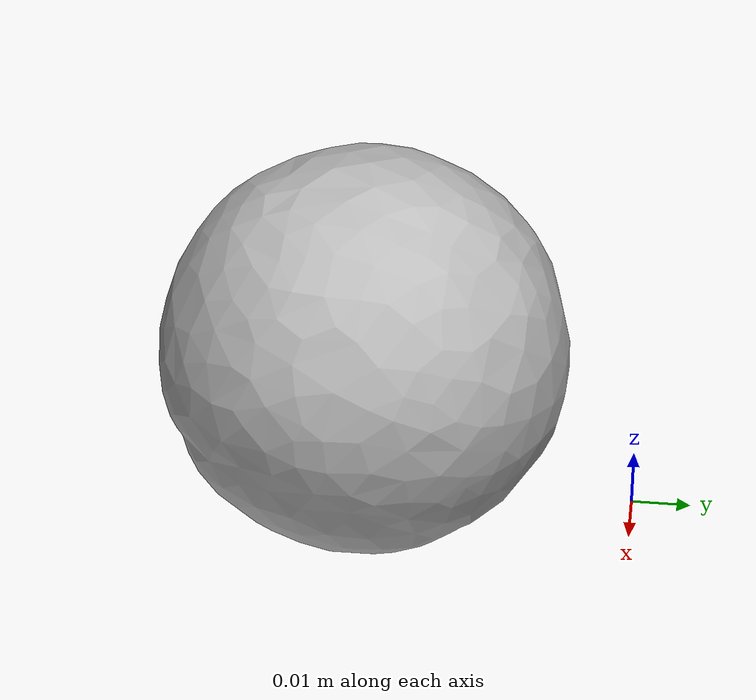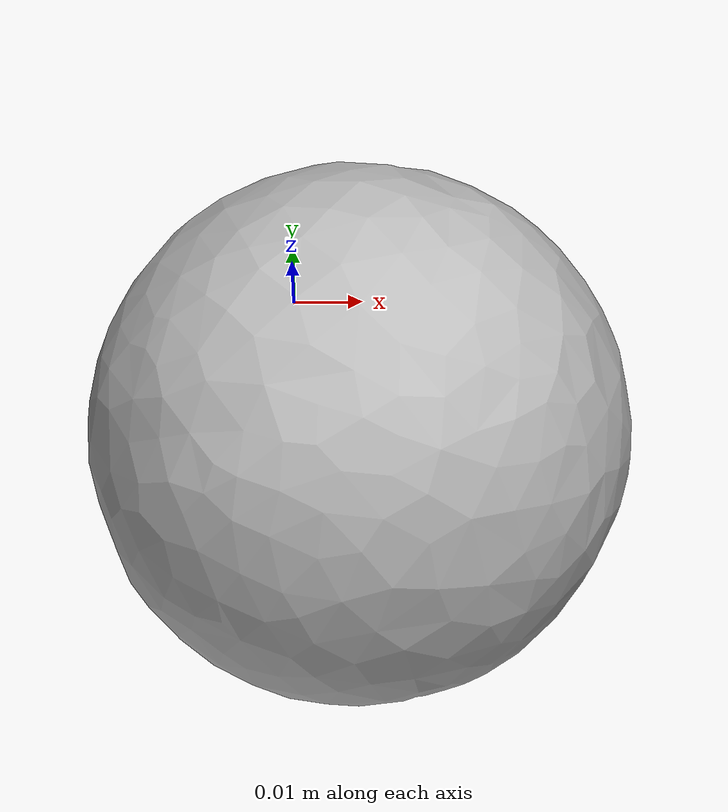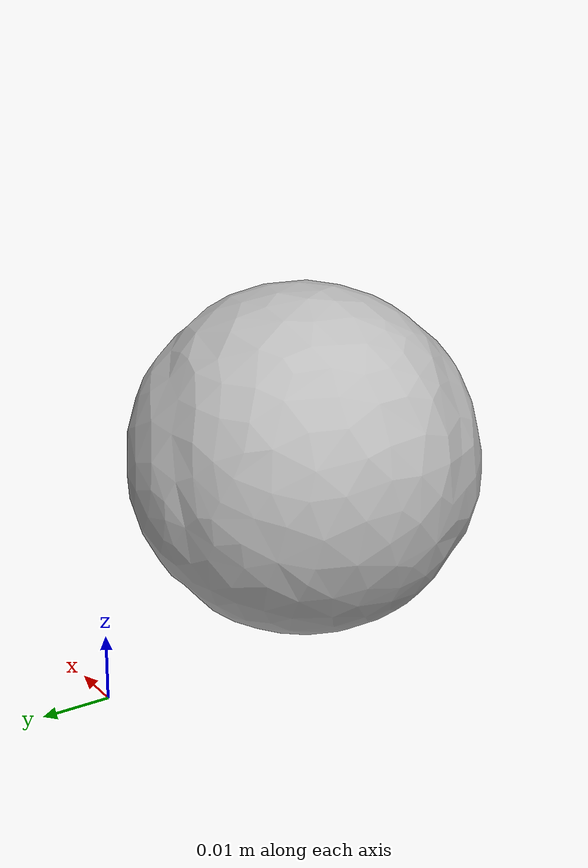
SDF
<?xml version="1.0" ?>
<sdf version="1.4">
  <model name='ycb_056_tennis_ball'>
    <link name='body'>
      <inertial>
        <mass>0.058</mass>
        <pose>0.00823323973626 -0.0441924263824 0.0328866204869 0 0 0</pose>
        <inertia>
          <ixx>2.58584279109e-05</ixx>
          <ixy>1.89792860915e-10</ixy>
          <ixz>-5.62637608871e-08</ixz>
          <iyy>2.58462737538e-05</iyy>
          <iyz>-2.61472881057e-08</iyz>
          <izz>2.59187047722e-05</izz>
        </inertia>
      </inertial>
      <visual name='ycb_056_tennis_ball_visual'>
        <pose>0 0 0 0 0 0</pose>
        <geometry>
          <mesh>
            <uri>model://ycb_056_tennis_ball/meshes/textured.dae</uri>
          </mesh>
        </geometry>
      </visual>
      <collision name='ycb_056_tennis_ball_collision'>
        <pose>0 0 0 0 0 0</pose>
        <geometry>
          <mesh>
            <uri>model://ycb_056_tennis_ball/meshes/nontextured.stl</uri>
          </mesh>
        </geometry>
        <max_contacts>10</max_contacts>
        <surface>
          <contact>
            <ode>
              <kp>1e15</kp>
              <kd>1e13</kd>
            </ode>
          </contact>
        </surface>
      </collision>
    </link>
  </model>
</sdf>
